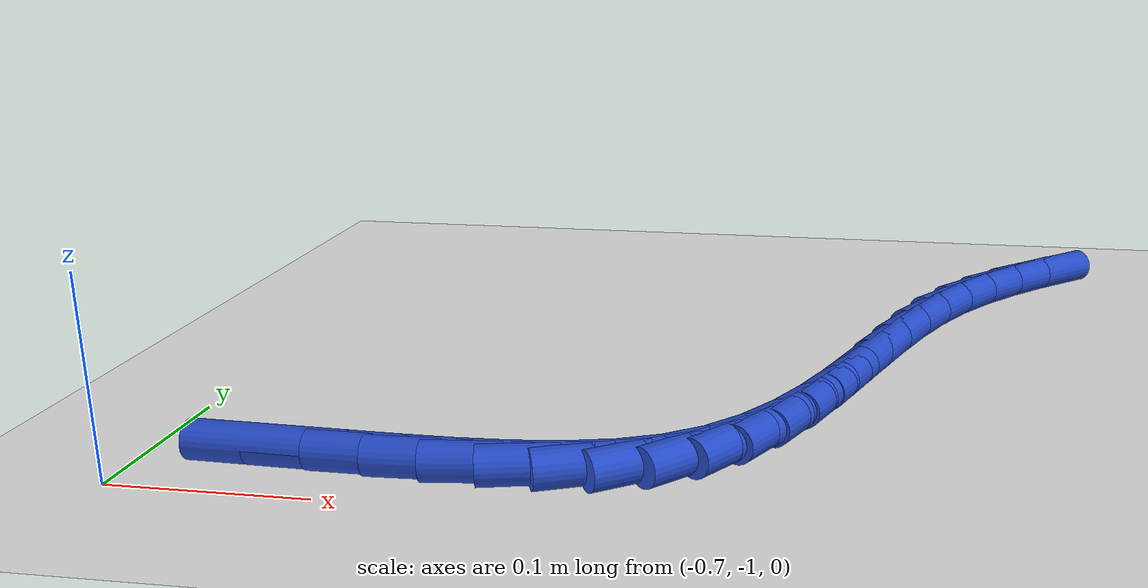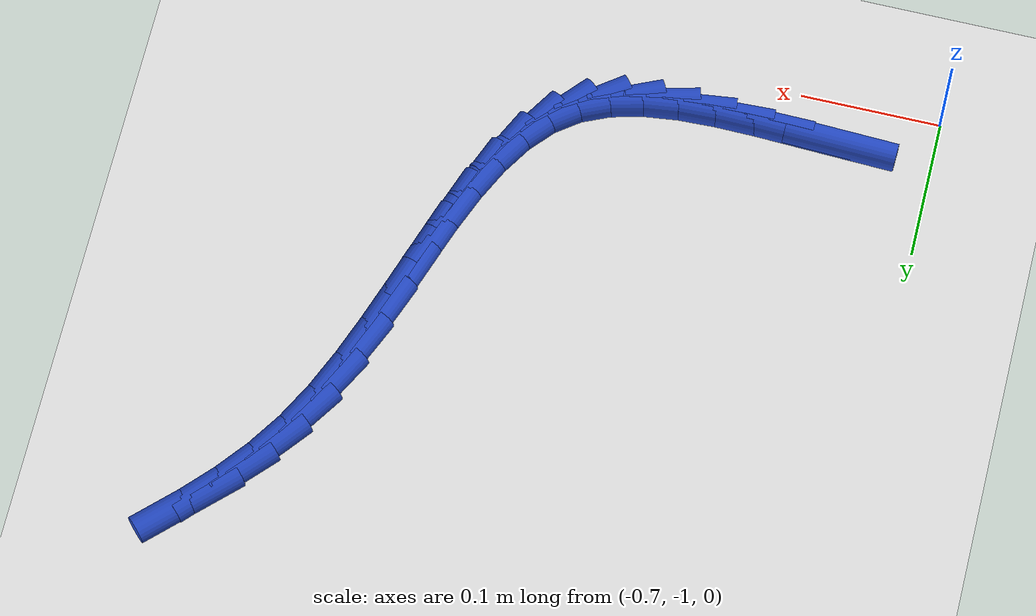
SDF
<sdf version="1.6">
 <world name="default">
  <model name="ground_plane">
   <static>1</static>
   <link name="link">
    <collision name="collision">
     <geometry><plane><normal>0 0 1</normal><size>100 100</size></plane></geometry>
     <surface><friction><ode><mu>100</mu><mu2>50</mu2></ode></friction></surface>
    </collision>
    <visual name="visual">
     <cast_shadows>0</cast_shadows>
     <geometry><plane><normal>0 0 1</normal><size>100 100</size></plane></geometry>
     <material>
      <script><uri>file://media/materials/scripts/gazebo.material</uri><name>Gazebo/WhiteGlow</name></script>
     </material>
    </visual>
   </link>
  </model>
  <model name="line">
   <link name="link_215">
    <pose>-0.6348183860103777 -0.9663547126245745 0.01 0 1.57 -0.03799452767563126</pose>
    <collision name="collision">
     <geometry><cylinder><radius>0.01</radius><length>0.08</length></cylinder></geometry>
    </collision>
    <visual name="visual">
     <material>
      <script><name>Gazebo/Blue</name><uri>file://media/materials/scripts/gazebo.material</uri></script>
     </material>
     <geometry><cylinder><radius>0.01</radius><length>0.08</length></cylinder></geometry>
    </visual>
   </link>
   <link name="link_216">
    <pose>-0.6041821657584331 -0.9675192817812709 0.01 0 1.57 -0.037978998736844384</pose>
    <collision name="collision">
     <geometry><cylinder><radius>0.01</radius><length>0.08</length></cylinder></geometry>
    </collision>
    <visual name="visual">
     <material>
      <script><name>Gazebo/Blue</name><uri>file://media/materials/scripts/gazebo.material</uri></script>
     </material>
     <geometry><cylinder><radius>0.01</radius><length>0.08</length></cylinder></geometry>
    </visual>
   </link>
   <link name="link_217">
    <pose>-0.5744165574071227 -0.968650293627679 0.01 0 1.57 -0.014128917743119526</pose>
    <collision name="collision">
     <geometry><cylinder><radius>0.01</radius><length>0.08</length></cylinder></geometry>
    </collision>
    <visual name="visual">
     <material>
      <script><name>Gazebo/Blue</name><uri>file://media/materials/scripts/gazebo.material</uri></script>
     </material>
     <geometry><cylinder><radius>0.01</radius><length>0.08</length></cylinder></geometry>
    </visual>
   </link>
   <link name="link_218">
    <pose>-0.5458229110396997 -0.9690543177901564 0.01 0 1.57 0.0374596577339026</pose>
    <collision name="collision">
     <geometry><cylinder><radius>0.01</radius><length>0.08</length></cylinder></geometry>
    </collision>
    <visual name="visual">
     <material>
      <script><name>Gazebo/Blue</name><uri>file://media/materials/scripts/gazebo.material</uri></script>
     </material>
     <geometry><cylinder><radius>0.01</radius><length>0.08</length></cylinder></geometry>
    </visual>
   </link>
   <link name="link_219">
    <pose>-0.5187025767394161 -0.96803792389506 0.01 0 1.57 0.12287981348283226</pose>
    <collision name="collision">
     <geometry><cylinder><radius>0.01</radius><length>0.08</length></cylinder></geometry>
    </collision>
    <visual name="visual">
     <material>
      <script><name>Gazebo/Blue</name><uri>file://media/materials/scripts/gazebo.material</uri></script>
     </material>
     <geometry><cylinder><radius>0.01</radius><length>0.08</length></cylinder></geometry>
    </visual>
   </link>
   <link name="link_220">
    <pose>-0.49335690458952436 -0.9649076815687478 0.01 0 1.57 0.24983060683604022</pose>
    <collision name="collision">
     <geometry><cylinder><radius>0.01</radius><length>0.08</length></cylinder></geometry>
    </collision>
    <visual name="visual">
     <material>
      <script><name>Gazebo/Blue</name><uri>file://media/materials/scripts/gazebo.material</uri></script>
     </material>
     <geometry><cylinder><radius>0.01</radius><length>0.08</length></cylinder></geometry>
    </visual>
   </link>
   <link name="link_221">
    <pose>-0.47008724467327817 -0.9589701604375771 0.01 0 1.57 0.4243136354387386</pose>
    <collision name="collision">
     <geometry><cylinder><radius>0.01</radius><length>0.08</length></cylinder></geometry>
    </collision>
    <visual name="visual">
     <material>
      <script><name>Gazebo/Blue</name><uri>file://media/materials/scripts/gazebo.material</uri></script>
     </material>
     <geometry><cylinder><radius>0.01</radius><length>0.08</length></cylinder></geometry>
    </visual>
   </link>
   <link name="link_222">
    <pose>-0.4491949470739299 -0.9495319301279055 0.01 0 1.57 0.641445654236241</pose>
    <collision name="collision">
     <geometry><cylinder><radius>0.01</radius><length>0.08</length></cylinder></geometry>
    </collision>
    <visual name="visual">
     <material>
      <script><name>Gazebo/Blue</name><uri>file://media/materials/scripts/gazebo.material</uri></script>
     </material>
     <geometry><cylinder><radius>0.01</radius><length>0.08</length></cylinder></geometry>
    </visual>
   </link>
   <link name="link_223">
    <pose>-0.430968877835698 -0.9359208238963608 0.01 0 1.57 0.8515930159187501</pose>
    <collision name="collision">
     <geometry><cylinder><radius>0.01</radius><length>0.08</length></cylinder></geometry>
    </collision>
    <visual name="visual">
     <material>
      <script><name>Gazebo/Blue</name><uri>file://media/materials/scripts/gazebo.material</uri></script>
     </material>
     <geometry><cylinder><radius>0.01</radius><length>0.08</length></cylinder></geometry>
    </visual>
   </link>
   <link name="link_224">
    <pose>-0.4153405554305122 -0.9180733327132148 0.01 0 1.57 1.0093364379878302</pose>
    <collision name="collision">
     <geometry><cylinder><radius>0.01</radius><length>0.08</length></cylinder></geometry>
    </collision>
    <visual name="visual">
     <material>
      <script><name>Gazebo/Blue</name><uri>file://media/materials/scripts/gazebo.material</uri></script>
     </material>
     <geometry><cylinder><radius>0.01</radius><length>0.08</length></cylinder></geometry>
    </visual>
   </link>
   <link name="link_225">
    <pose>-0.40184015270966617 -0.8966095456106259 0.01 0 1.57 1.1186192324475766</pose>
    <collision name="collision">
     <geometry><cylinder><radius>0.01</radius><length>0.08</length></cylinder></geometry>
    </collision>
    <visual name="visual">
     <material>
      <script><name>Gazebo/Blue</name><uri>file://media/materials/scripts/gazebo.material</uri></script>
     </material>
     <geometry><cylinder><radius>0.01</radius><length>0.08</length></cylinder></geometry>
    </visual>
   </link>
   <link name="link_226">
    <pose>-0.38997652166771474 -0.8721858666958273 0.01 0 1.57 1.1894148484296956</pose>
    <collision name="collision">
     <geometry><cylinder><radius>0.01</radius><length>0.08</length></cylinder></geometry>
    </collision>
    <visual name="visual">
     <material>
      <script><name>Gazebo/Blue</name><uri>file://media/materials/scripts/gazebo.material</uri></script>
     </material>
     <geometry><cylinder><radius>0.01</radius><length>0.08</length></cylinder></geometry>
    </visual>
   </link>
   <link name="link_227">
    <pose>-0.37925851429921265 -0.8454587000760528 0.01 0 1.57 1.2299660853919792</pose>
    <collision name="collision">
     <geometry><cylinder><radius>0.01</radius><length>0.08</length></cylinder></geometry>
    </collision>
    <visual name="visual">
     <material>
      <script><name>Gazebo/Blue</name><uri>file://media/materials/scripts/gazebo.material</uri></script>
     </material>
     <geometry><cylinder><radius>0.01</radius><length>0.08</length></cylinder></geometry>
    </visual>
   </link>
   <link name="link_228">
    <pose>-0.3691949825987146 -0.8170844498585357 0.01 0 1.57 1.2456202801154974</pose>
    <collision name="collision">
     <geometry><cylinder><radius>0.01</radius><length>0.08</length></cylinder></geometry>
    </collision>
    <visual name="visual">
     <material>
      <script><name>Gazebo/Blue</name><uri>file://media/materials/scripts/gazebo.material</uri></script>
     </material>
     <geometry><cylinder><radius>0.01</radius><length>0.08</length></cylinder></geometry>
    </visual>
   </link>
   <link name="link_229">
    <pose>-0.359294778560775 -0.7877195201505088 0.01 0 1.57 1.2391305503093073</pose>
    <collision name="collision">
     <geometry><cylinder><radius>0.01</radius><length>0.08</length></cylinder></geometry>
    </collision>
    <visual name="visual">
     <material>
      <script><name>Gazebo/Blue</name><uri>file://media/materials/scripts/gazebo.material</uri></script>
     </material>
     <geometry><cylinder><radius>0.01</radius><length>0.08</length></cylinder></geometry>
    </visual>
   </link>
   <link name="link_230">
    <pose>-0.34906675417994926 -0.7580203150592073 0.01 0 1.57 1.2111130861805381</pose>
    <collision name="collision">
     <geometry><cylinder><radius>0.01</radius><length>0.08</length></cylinder></geometry>
    </collision>
    <visual name="visual">
     <material>
      <script><name>Gazebo/Blue</name><uri>file://media/materials/scripts/gazebo.material</uri></script>
     </material>
     <geometry><cylinder><radius>0.01</radius><length>0.08</length></cylinder></geometry>
    </visual>
   </link>
   <link name="link_231">
    <pose>-0.3380197614507918 -0.7286432386918638 0.01 0 1.57 1.1603753561501078</pose>
    <collision name="collision">
     <geometry><cylinder><radius>0.01</radius><length>0.08</length></cylinder></geometry>
    </collision>
    <visual name="visual">
     <material>
      <script><name>Gazebo/Blue</name><uri>file://media/materials/scripts/gazebo.material</uri></script>
     </material>
     <geometry><cylinder><radius>0.01</radius><length>0.08</length></cylinder></geometry>
    </visual>
   </link>
   <link name="link_232">
    <pose>-0.3256626523678573 -0.700244695155712 0.01 0 1.57 1.0842063477196295</pose>
    <collision name="collision">
     <geometry><cylinder><radius>0.01</radius><length>0.08</length></cylinder></geometry>
    </collision>
    <visual name="visual">
     <material>
      <script><name>Gazebo/Blue</name><uri>file://media/materials/scripts/gazebo.material</uri></script>
     </material>
     <geometry><cylinder><radius>0.01</radius><length>0.08</length></cylinder></geometry>
    </visual>
   </link>
   <link name="link_233">
    <pose>-0.31150427892570054 -0.6734810885579852 0.01 0 1.57 0.9862601720745702</pose>
    <collision name="collision">
     <geometry><cylinder><radius>0.01</radius><length>0.08</length></cylinder></geometry>
    </collision>
    <visual name="visual">
     <material>
      <script><name>Gazebo/Blue</name><uri>file://media/materials/scripts/gazebo.material</uri></script>
     </material>
     <geometry><cylinder><radius>0.01</radius><length>0.08</length></cylinder></geometry>
    </visual>
   </link>
   <link name="link_234">
    <pose>-0.2952008972768325 -0.6488413820845359 0.01 0 1.57 0.8961065804839463</pose>
    <collision name="collision">
     <geometry><cylinder><radius>0.01</radius><length>0.08</length></cylinder></geometry>
    </collision>
    <visual name="visual">
     <material>
      <script><name>Gazebo/Blue</name><uri>file://media/materials/scripts/gazebo.material</uri></script>
     </material>
     <geometry><cylinder><radius>0.01</radius><length>0.08</length></cylinder></geometry>
    </visual>
   </link>
   <link name="link_235">
    <pose>-0.2770230768073377 -0.6261167216053924 0.01 0 1.57 0.8240480103961466</pose>
    <collision name="collision">
     <geometry><cylinder><radius>0.01</radius><length>0.08</length></cylinder></geometry>
    </collision>
    <visual name="visual">
     <material>
      <script><name>Gazebo/Blue</name><uri>file://media/materials/scripts/gazebo.material</uri></script>
     </material>
     <geometry><cylinder><radius>0.01</radius><length>0.08</length></cylinder></geometry>
    </visual>
   </link>
   <link name="link_236">
    <pose>-0.25740139579009474 -0.6049164939696321 0.01 0 1.57 0.7714301442622671</pose>
    <collision name="collision">
     <geometry><cylinder><radius>0.01</radius><length>0.08</length></cylinder></geometry>
    </collision>
    <visual name="visual">
     <material>
      <script><name>Gazebo/Blue</name><uri>file://media/materials/scripts/gazebo.material</uri></script>
     </material>
     <geometry><cylinder><radius>0.01</radius><length>0.08</length></cylinder></geometry>
    </visual>
   </link>
  </model>
 </world>
</sdf>
